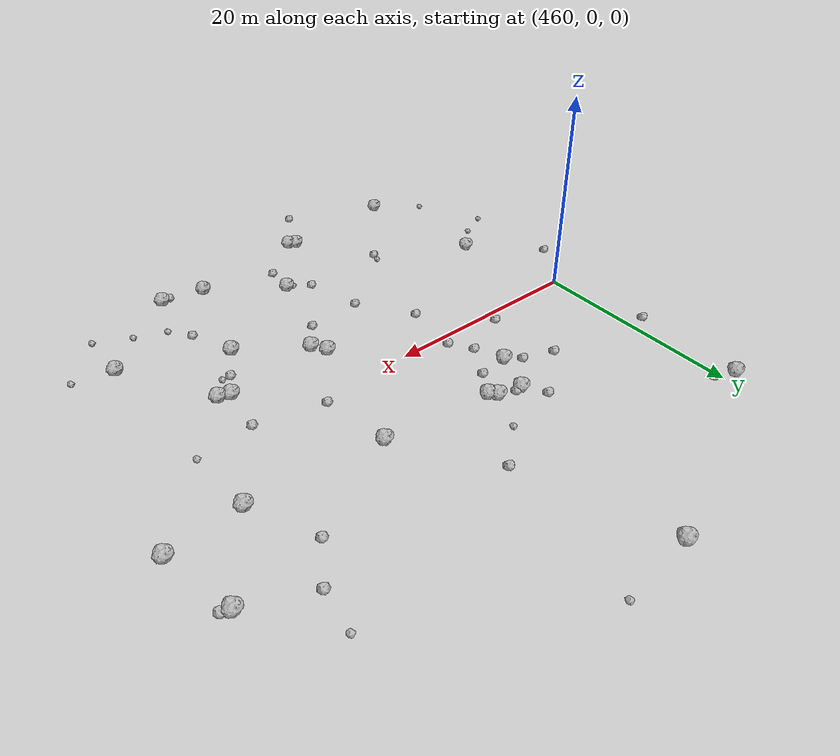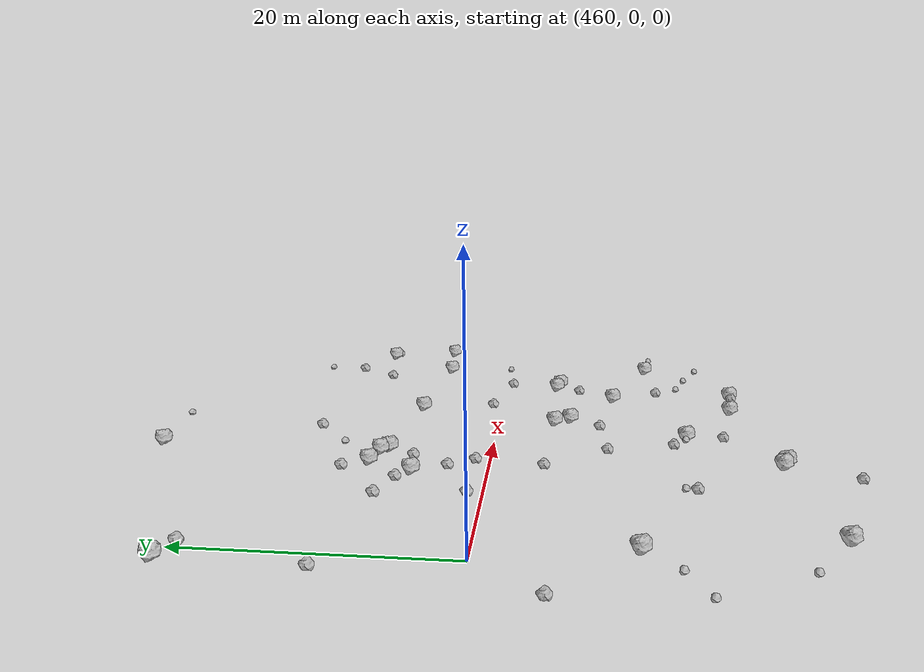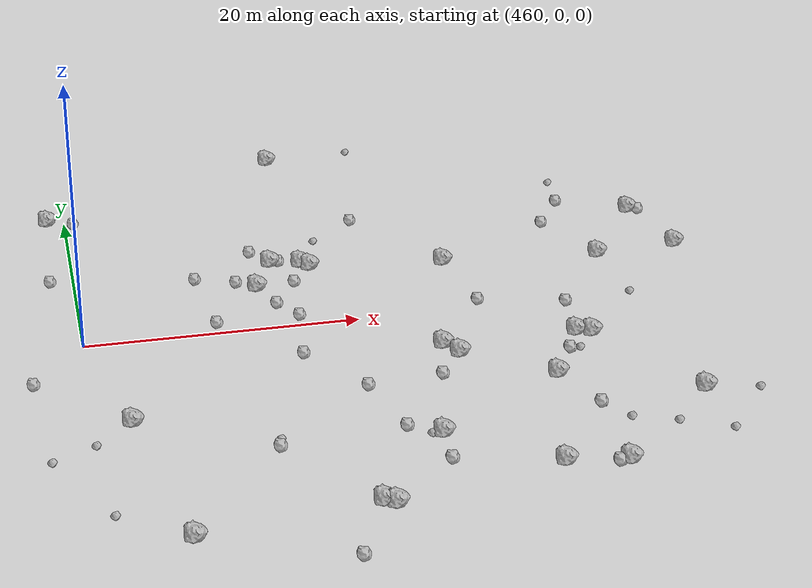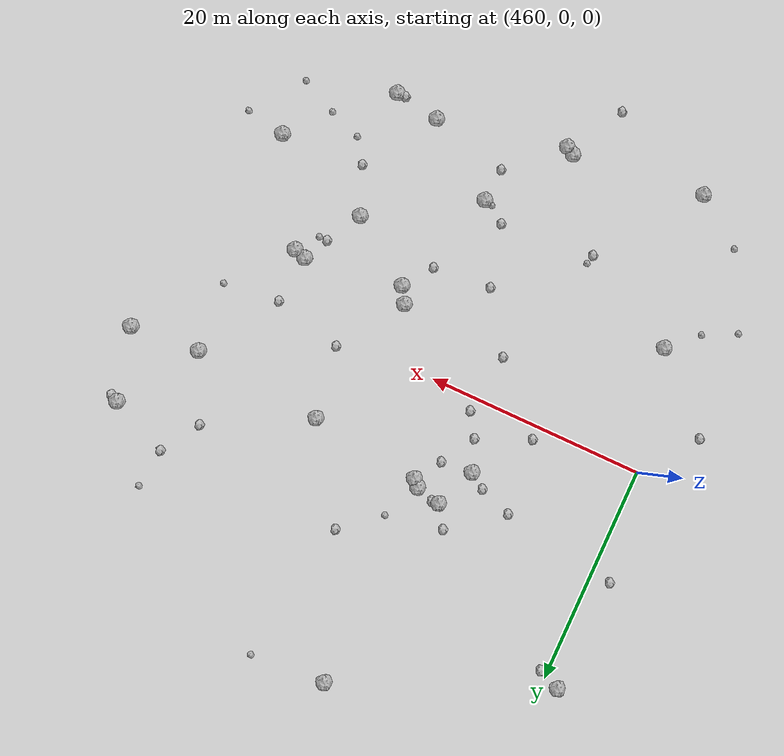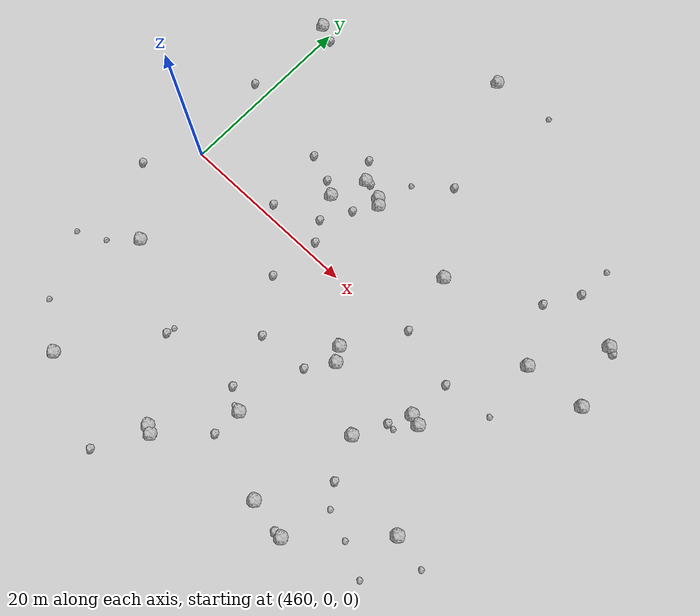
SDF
<sdf version="1.6">
 <world name="default">
  <include><uri>model://sun</uri></include>
  <model name="rock1_12_4">
   <include><uri>model://rock1</uri><pose>464.88030515505756 -25.07043670172728 0.5 0 0 0</pose></include>
  </model>
  <model name="rock1_12_5">
   <include><uri>model://rock1</uri><pose>506.4521606116376 6.923022635159846 0.5 0 0 0</pose></include>
  </model>
  <model name="rock1_12_6">
   <include><uri>model://rock1</uri><pose>485.1247332922137 -5.020354288579675 0.5 0 0 0</pose></include>
  </model>
  <model name="rock1_12_7">
   <include><uri>model://rock1</uri><pose>488.0306180592254 7.48077113080457 0.5 0 0 0</pose></include>
  </model>
  <model name="rock1_12_8">
   <include><uri>model://rock1</uri><pose>473.4310434552858 6.090124707445213 0.5 0 0 0</pose></include>
  </model>
  <model name="rock1_12_9">
   <include><uri>model://rock1</uri><pose>492.00698450949125 -10.555517461714746 0.5 0 0 0</pose></include>
  </model>
  <model name="rock1_12_10">
   <include><uri>model://rock1</uri><pose>500.05084696177477 6.3904044806665965 0.5 0 0 0</pose></include>
  </model>
  <model name="rock1_12_11">
   <include><uri>model://rock1</uri><pose>458.72472807242445 20.24771683277435 0.5 0 0 0</pose></include>
  </model>
  <model name="rock1_12_12">
   <include><uri>model://rock1</uri><pose>482.4601248001727 -16.49470320394674 0.5 0 0 0</pose></include>
  </model>
  <model name="rock1_12_13">
   <include><uri>model://rock1</uri><pose>504.7434858646459 13.487873535049424 0.5 0 0 0</pose></include>
  </model>
  <model name="rock1_12_14">
   <include><uri>model://rock1</uri><pose>477.8638237070998 8.688913577031883 0.5 0 0 0</pose></include>
  </model>
  <model name="rock1_12_15">
   <include><uri>model://rock1</uri><pose>489.42586117985167 -21.363451871434336 0.5 0 0 0</pose></include>
  </model>
  <model name="rock1_12_16">
   <include><uri>model://rock1</uri><pose>501.42789874143955 -14.374182747536665 0.5 0 0 0</pose></include>
  </model>
  <model name="rock1_12_17">
   <include><uri>model://rock1</uri><pose>493.5951703167617 -22.01398238328128 0.5 0 0 0</pose></include>
  </model>
  <model name="rock1_12_18">
   <include><uri>model://rock1</uri><pose>462.46004336979615 -11.100309083557939 0.5 0 0 0</pose></include>
  </model>
  <model name="rock1_12_19">
   <include><uri>model://rock1</uri><pose>476.9812790932569 -23.51524520829667 0.5 0 0 0</pose></include>
  </model>
  <model name="rock1_12_20">
   <include><uri>model://rock1</uri><pose>477.25213542305374 9.304404548956299 0.5 0 0 0</pose></include>
  </model>
  <model name="rock1_12_21">
   <include><uri>model://rock1</uri><pose>486.0038880097736 -6.441441826992655 0.5 0 0 0</pose></include>
  </model>
  <model name="rock1_12_22">
   <include><uri>model://rock1</uri><pose>494.93827500001186 -5.070477597970498 0.5 0 0 0</pose></include>
  </model>
  <model name="rock1_12_23">
   <include><uri>model://rock1</uri><pose>496.02531899131725 -5.407314879448673 0.5 0 0 0</pose></include>
  </model>
  <model name="rock1_12_24">
   <include><uri>model://rock1</uri><pose>477.62664523259275 28.308638144526107 0.5 0 0 0</pose></include>
  </model>
  <model name="rock1_12_25">
   <include><uri>model://rock1</uri><pose>477.72130094999204 -23.93066065950802 0.5 0 0 0</pose></include>
  </model>
  <model name="rock1_12_26">
   <include><uri>model://rock1</uri><pose>474.9900855450872 9.81333282590434 0.5 0 0 0</pose></include>
  </model>
  <model name="rock2_12_0">
   <include><uri>model://rock2</uri><pose>471.93908187480315 7.085176883804692 0.3 0 0 0</pose></include>
  </model>
  <model name="rock2_12_1">
   <include><uri>model://rock2</uri><pose>468.9583030629847 8.148419248223348 0.3 0 0 0</pose></include>
  </model>
  <model name="rock2_12_2">
   <include><uri>model://rock2</uri><pose>460.66045353375836 19.476356372980156 0.3 0 0 0</pose></include>
  </model>
  <model name="rock2_12_3">
   <include><uri>model://rock2</uri><pose>480.22403164043914 -15.178363714490759 0.3 0 0 0</pose></include>
  </model>
  <model name="rock2_12_4">
   <include><uri>model://rock2</uri><pose>458.27489627898973 9.904779884124842 0.3 0 0 0</pose></include>
  </model>
  <model name="rock2_12_5">
   <include><uri>model://rock2</uri><pose>495.4022357933628 -0.5972462426201339 0.3 0 0 0</pose></include>
  </model>
  <model name="rock2_12_6">
   <include><uri>model://rock2</uri><pose>499.38314525708137 15.8742105802012 0.3 0 0 0</pose></include>
  </model>
  <model name="rock2_12_7">
   <include><uri>model://rock2</uri><pose>471.585908198278 -16.00000110220445 0.3 0 0 0</pose></include>
  </model>
  <model name="rock2_12_8">
   <include><uri>model://rock2</uri><pose>475.79320126001875 1.2105329830093332 0.3 0 0 0</pose></include>
  </model>
  <model name="rock2_12_9">
   <include><uri>model://rock2</uri><pose>469.70636099536955 1.2179961630236704 0.3 0 0 0</pose></include>
  </model>
  <model name="rock2_12_10">
   <include><uri>model://rock2</uri><pose>478.73281452026833 -9.554214470908938 0.3 0 0 0</pose></include>
  </model>
  <model name="rock2_12_11">
   <include><uri>model://rock2</uri><pose>475.60666281138793 9.894741718951366 0.3 0 0 0</pose></include>
  </model>
  <model name="rock2_12_12">
   <include><uri>model://rock2</uri><pose>484.09811887722975 -9.069527285000596 0.3 0 0 0</pose></include>
  </model>
  <model name="rock2_12_13">
   <include><uri>model://rock2</uri><pose>456.22331936374724 -5.017611329360115 0.3 0 0 0</pose></include>
  </model>
  <model name="rock2_12_14">
   <include><uri>model://rock2</uri><pose>473.64110944462163 11.78862542701453 0.3 0 0 0</pose></include>
  </model>
  <model name="rock2_12_15">
   <include><uri>model://rock2</uri><pose>497.1836500309584 12.365587949294344 0.3 0 0 0</pose></include>
  </model>
  <model name="rock2_12_16">
   <include><uri>model://rock2</uri><pose>475.12876482725767 -4.356250896301674 0.3 0 0 0</pose></include>
  </model>
  <model name="rock2_12_17">
   <include><uri>model://rock2</uri><pose>493.77053457777356 -7.322946424162527 0.3 0 0 0</pose></include>
  </model>
  <model name="rock2_12_18">
   <include><uri>model://rock2</uri><pose>476.2653635709841 6.398742842176652 0.3 0 0 0</pose></include>
  </model>
  <model name="rock2_12_19">
   <include><uri>model://rock2</uri><pose>505.45386293095885 13.188059477026144 0.3 0 0 0</pose></include>
  </model>
  <model name="rock2_12_20">
   <include><uri>model://rock2</uri><pose>493.7543794222306 -14.84791496461032 0.3 0 0 0</pose></include>
  </model>
  <model name="rock2_12_21">
   <include><uri>model://rock2</uri><pose>482.24156230145775 -19.608189339171496 0.3 0 0 0</pose></include>
  </model>
  <model name="rock2_12_22">
   <include><uri>model://rock2</uri><pose>474.5332800551395 -28.89311891423636 0.3 0 0 0</pose></include>
  </model>
  <model name="rock2_12_23">
   <include><uri>model://rock2</uri><pose>492.7863167997884 -22.049183452487085 0.3 0 0 0</pose></include>
  </model>
  <model name="rock2_12_24">
   <include><uri>model://rock2</uri><pose>489.07706265716297 0.9324034569191717 0.3 0 0 0</pose></include>
  </model>
  <model name="rock2_12_25">
   <include><uri>model://rock2</uri><pose>482.3149914640538 15.73874474465795 0.3 0 0 0</pose></include>
  </model>
  <model name="rock2_12_26">
   <include><uri>model://rock2</uri><pose>474.44507323673815 3.3125231259587835 0.3 0 0 0</pose></include>
  </model>
  <model name="rock3_12_0">
   <include><uri>model://rock3</uri><pose>471.76172997037725 -15.182471570578485 0.2 0 0 0</pose></include>
  </model>
  <model name="rock3_12_1">
   <include><uri>model://rock3</uri><pose>484.48316998462394 28.856338998209473 0.2 0 0 0</pose></include>
  </model>
  <model name="rock3_12_2">
   <include><uri>model://rock3</uri><pose>460.3074361502156 -21.8515855957163 0.2 0 0 0</pose></include>
  </model>
  <model name="rock3_12_3">
   <include><uri>model://rock3</uri><pose>459.82062783327586 -13.586368287588147 0.2 0 0 0</pose></include>
  </model>
  <model name="rock3_12_4">
   <include><uri>model://rock3</uri><pose>505.06678700107767 -15.101562509598942 0.2 0 0 0</pose></include>
  </model>
  <model name="rock3_12_5">
   <include><uri>model://rock3</uri><pose>495.2269257387951 -17.026365523427415 0.2 0 0 0</pose></include>
  </model>
  <model name="rock3_12_6">
   <include><uri>model://rock3</uri><pose>478.83855663635245 12.759115219100337 0.2 0 0 0</pose></include>
  </model>
  <model name="rock3_12_7">
   <include><uri>model://rock3</uri><pose>494.5291368950303 -7.383457636078234 0.2 0 0 0</pose></include>
  </model>
  <model name="rock3_12_8">
   <include><uri>model://rock3</uri><pose>501.5269498053641 -19.71513832816347 0.2 0 0 0</pose></include>
  </model>
  <model name="rock3_12_9">
   <include><uri>model://rock3</uri><pose>456.86809216235656 -15.053102643137636 0.2 0 0 0</pose></include>
  </model>
  <model name="rock3_12_10">
   <include><uri>model://rock3</uri><pose>481.66988053168336 -16.403856807562462 0.2 0 0 0</pose></include>
  </model>
  <model name="rock3_12_11">
   <include><uri>model://rock3</uri><pose>500.5609165691732 -0.027030332546623015 0.2 0 0 0</pose></include>
  </model>
  <model name="rock3_12_12">
   <include><uri>model://rock3</uri><pose>498.1826212827769 -18.12554126670302 0.2 0 0 0</pose></include>
  </model>
  <model name="rock3_12_13">
   <include><uri>model://rock3</uri><pose>499.78784846285185 19.49062721699206 0.2 0 0 0</pose></include>
  </model>
 </world>
</sdf>
